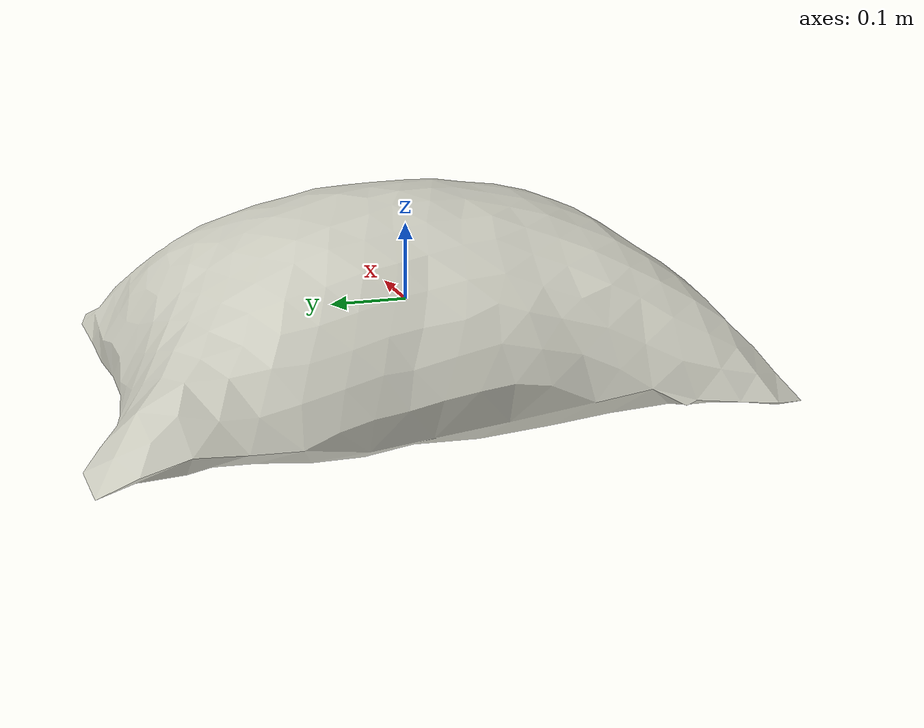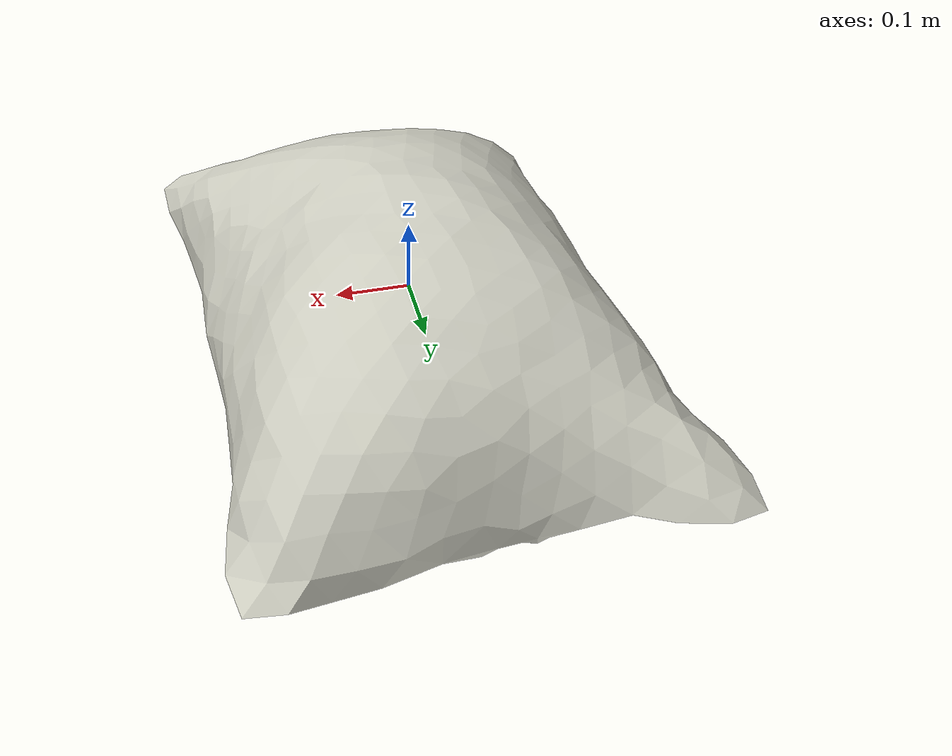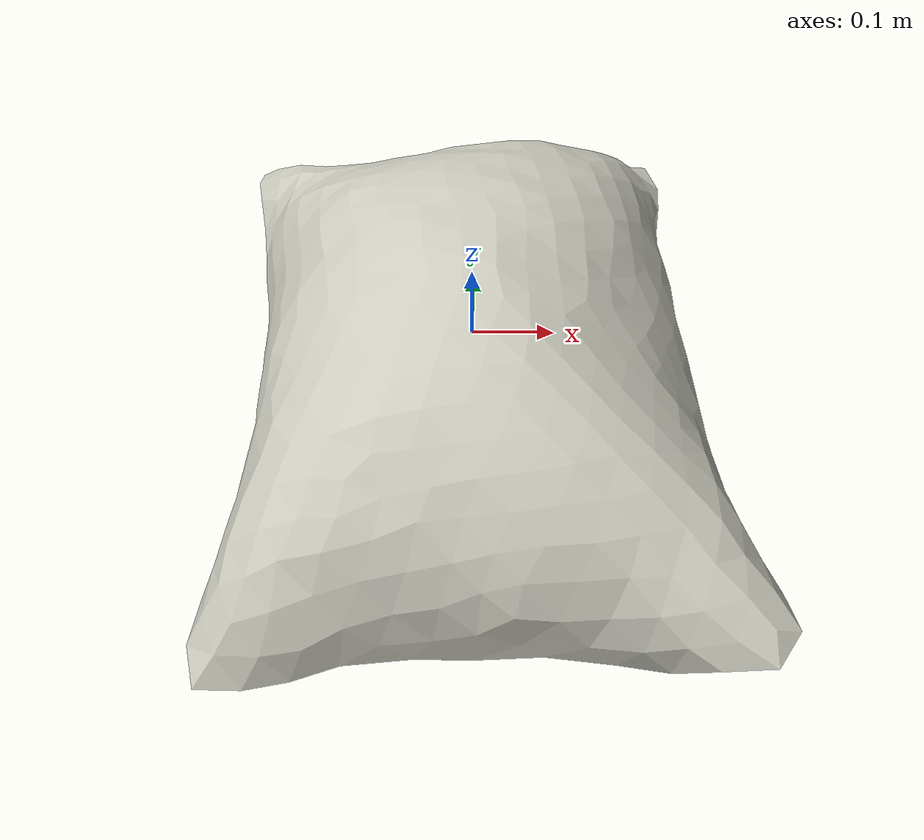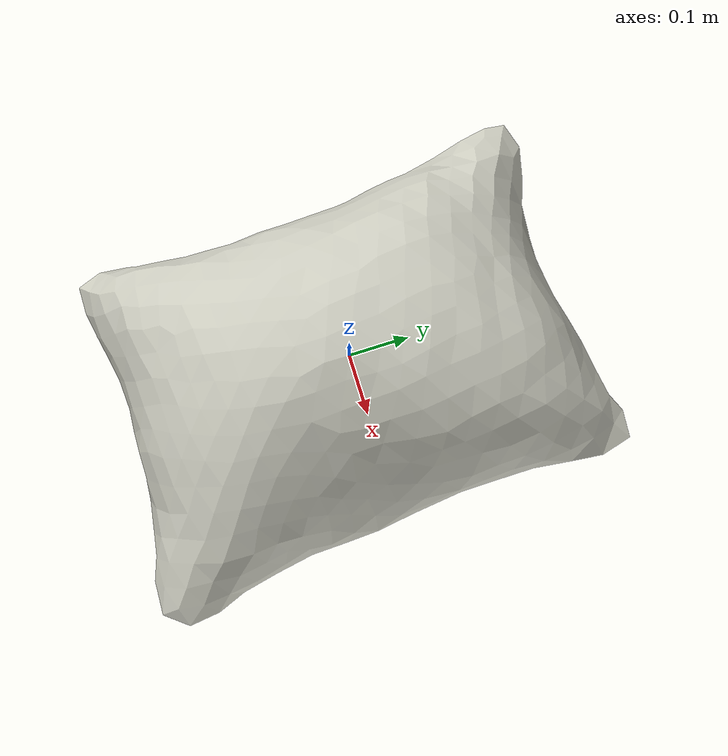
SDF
<?xml version="1.0" ?><sdf version="1.5"><model name="coffee-sack1">
<link name="link">
<pose>0 0 0 0 0 0</pose>
<inertial>
<pose>0 0 0 0 0 0</pose>
<mass>2</mass>
<inertia>
<ixx>0.129271143</ixx>
<ixy>0</ixy><iyy>0.089786857</iyy>
<ixz>0</ixz><iyz>0</iyz><izz>0.187050857</izz>
</inertia>
</inertial>
<visual name="visual">
<pose>0 0 0 0 0 0</pose>
<geometry><mesh><uri>model://coffee-sack1-centered/meshes/coffee-sack1-centered.dae</uri></mesh></geometry>
<material><script><uri>file://media/materials/scripts/gazebo.material</uri><name>Gazebo/PaintedWall</name></script></material></visual>
<collision name="collision"><pose>0 0 0 0 0 0</pose><geometry><mesh><uri>model://coffee-sack1-centered/meshes/coffee-sack1-centered.dae</uri></mesh></geometry>
<surface><friction><ode><mu>1.000000</mu><mu2>1.000000</mu2></ode></friction></surface>
</collision></link></model></sdf>
